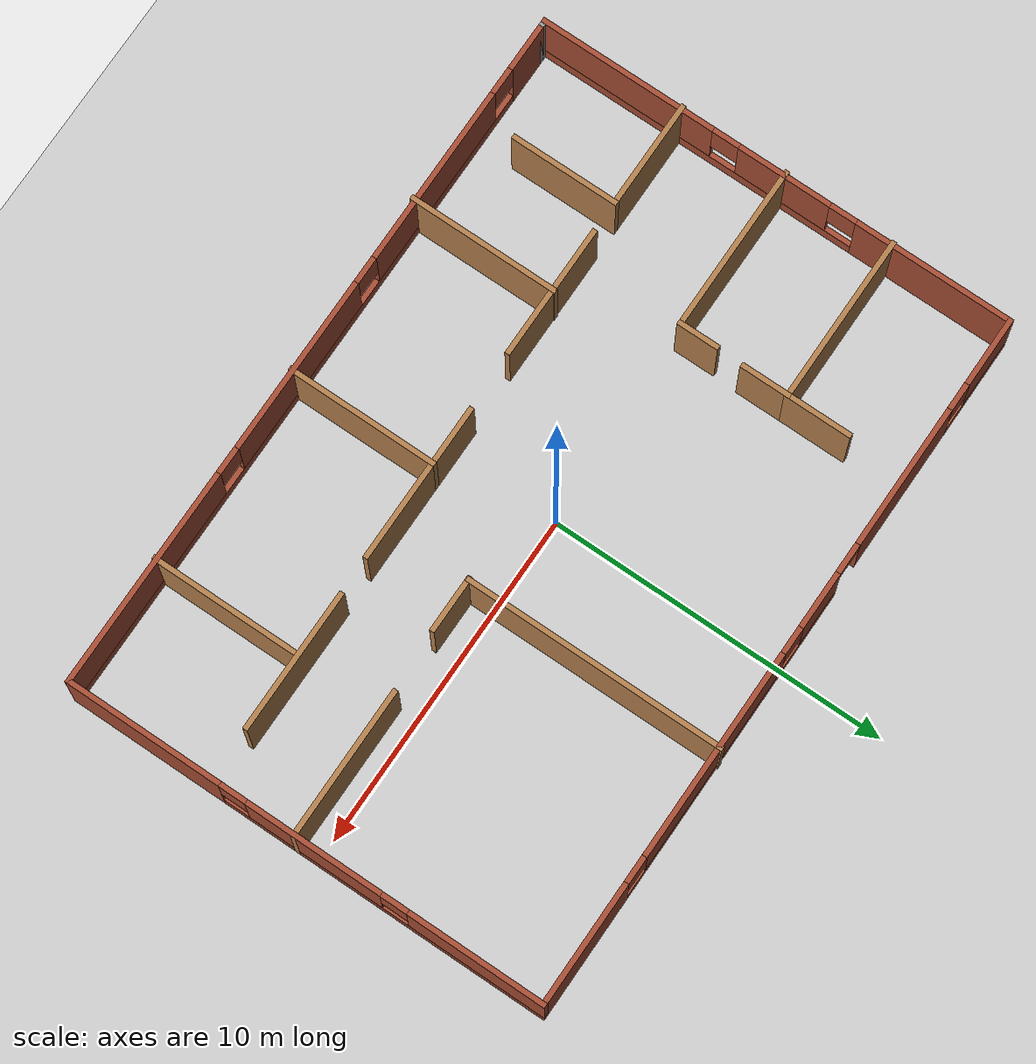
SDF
<sdf version="1.7">
 <world name="default">
  <light name="sun" type="directional">
   <pose>0 0 10 0 -0 0</pose>
   <diffuse>0.8 0.8 0.8 1</diffuse>
   <specular>0.2 0.2 0.2 1</specular>
   <attenuation>
    <range>1000</range>
    <constant>0.9</constant>
    <linear>0.01</linear>
    <quadratic>0.001</quadratic>
   </attenuation>
   <direction>-0.5 0.1 -0.9</direction>
   <spot><inner_angle>0</inner_angle><outer_angle>0</outer_angle><falloff>0</falloff></spot>
  </light>
  <model name="ground_plane">
   <static>1</static>
   <link name="link">
    <collision name="collision">
     <geometry><plane><normal>0 0 1</normal><size>100 100</size></plane></geometry>
     <surface>
      <contact><collide_bitmask>65535</collide_bitmask></contact>
      <friction><ode><mu>100</mu><mu2>50</mu2></ode></friction>
     </surface>
    </collision>
    <visual name="visual">
     <cast_shadows>0</cast_shadows>
     <geometry><plane><normal>0 0 1</normal><size>100 100</size></plane></geometry>
     <material>
      <script><uri>file://media/materials/scripts/gazebo.material</uri><name>Gazebo/Grey</name></script>
     </material>
    </visual>
   </link>
  </model>
  <gravity>0 0 -9.8</gravity>
  <magnetic_field>6e-06 2.3e-05 -4.2e-05</magnetic_field>
  <atmosphere type="adiabatic"/>
  <physics type="ode">
   <max_step_size>0.001</max_step_size>
   <real_time_factor>1</real_time_factor>
   <real_time_update_rate>1000</real_time_update_rate>
  </physics>
  <scene><ambient>0.4 0.4 0.4 1</ambient><background>0.7 0.7 0.7 1</background><shadows>1</shadows></scene>
  <audio><device>default</device></audio>
  <spherical_coordinates>
   <surface_model>EARTH_WGS84</surface_model>
   <latitude_deg>0</latitude_deg>
   <longitude_deg>0</longitude_deg>
   <elevation>0</elevation>
   <heading_deg>0</heading_deg>
  </spherical_coordinates>
  <model name="floor2">
   <pose>0.091476 -0.299536 0 0 -0 0</pose>
   <link name="Wall_10">
    <collision name="Wall_10_Collision">
     <geometry><box><size>2 0.15 2.5</size></box></geometry>
     <pose>0 0 1.25 0 -0 0</pose>
    </collision>
    <visual name="Wall_10_Visual">
     <pose>0 0 1.25 0 -0 0</pose>
     <geometry><box><size>2 0.15 2.5</size></box></geometry>
     <material>
      <script><uri>file://media/materials/scripts/gazebo.material</uri><name>Gazebo/Wood</name></script>
      <ambient>1 1 1 1</ambient>
     </material>
     <meta><layer>0</layer></meta>
    </visual>
    <pose>-5.70047 4.52186 0 0 -0 1.5708</pose>
   </link>
   <link name="Wall_12">
    <collision name="Wall_12_Collision">
     <geometry><box><size>5 0.15 2.5</size></box></geometry>
     <pose>0 0 1.25 0 -0 0</pose>
    </collision>
    <visual name="Wall_12_Visual">
     <pose>0 0 1.25 0 -0 0</pose>
     <geometry><box><size>5 0.15 2.5</size></box></geometry>
     <material>
      <script><uri>file://media/materials/scripts/gazebo.material</uri><name>Gazebo/Wood</name></script>
      <ambient>1 1 1 1</ambient>
     </material>
     <meta><layer>0</layer></meta>
    </visual>
    <pose>-8.16065 0.29006 0 0 -0 0</pose>
   </link>
   <link name="Wall_13">
    <collision name="Wall_13_Collision">
     <geometry><box><size>1.25 0.15 2.5</size></box></geometry>
     <pose>0 0 1.25 0 -0 0</pose>
    </collision>
    <visual name="Wall_13_Visual">
     <pose>0 0 1.25 0 -0 0</pose>
     <geometry><box><size>1.25 0.15 2.5</size></box></geometry>
     <material>
      <script><uri>file://media/materials/scripts/gazebo.material</uri><name>Gazebo/Wood</name></script>
      <ambient>1 1 1 1</ambient>
     </material>
     <meta><layer>0</layer></meta>
    </visual>
    <pose>-5.73565 0.84006 0 0 -0 1.5708</pose>
   </link>
   <link name="Wall_15">
    <collision name="Wall_15_Collision">
     <geometry><box><size>1.5 0.15 2.5</size></box></geometry>
     <pose>0 0 1.25 0 -0 0</pose>
    </collision>
    <visual name="Wall_15_Visual">
     <pose>0 0 1.25 0 -0 0</pose>
     <geometry><box><size>1.5 0.15 2.5</size></box></geometry>
     <material>
      <script><uri>file://media/materials/scripts/gazebo.material</uri><name>Gazebo/Wood</name></script>
      <ambient>1 1 1 1</ambient>
     </material>
     <meta><layer>0</layer></meta>
    </visual>
    <pose>-5.70047 2.92186 0 0 -0 -1.5708</pose>
   </link>
   <link name="Wall_17">
    <collision name="Wall_17_Collision">
     <geometry><box><size>3.25 0.15 2.5</size></box></geometry>
     <pose>0 0 1.25 0 -0 0</pose>
    </collision>
    <visual name="Wall_17_Visual">
     <pose>0 0 1.25 0 -0 0</pose>
     <geometry><box><size>3.25 0.15 2.5</size></box></geometry>
     <material>
      <script><uri>file://media/materials/scripts/gazebo.material</uri><name>Gazebo/Wood</name></script>
      <ambient>1 1 1 1</ambient>
     </material>
     <meta><layer>0</layer></meta>
    </visual>
    <pose>-9.01279 -2.90184 0 0 -0 0</pose>
   </link>
   <link name="Wall_18">
    <collision name="Wall_18_Collision">
     <geometry><box><size>3.25 0.15 2.5</size></box></geometry>
     <pose>0 0 1.25 0 -0 0</pose>
    </collision>
    <visual name="Wall_18_Visual">
     <pose>0 0 1.25 0 -0 0</pose>
     <geometry><box><size>3.25 0.15 2.5</size></box></geometry>
     <material>
      <script><uri>file://media/materials/scripts/gazebo.material</uri><name>Gazebo/Wood</name></script>
      <ambient>1 1 1 1</ambient>
     </material>
     <meta><layer>0</layer></meta>
    </visual>
    <pose>-7.46279 -4.45184 0 0 -0 -1.5708</pose>
   </link>
   <link name="Wall_2">
    <pose>0.159757 -7.15745 0 0 -0 0</pose>
    <visual name="Wall_2_Visual_0">
     <pose>-9.7928 0 1.25 0 -0 0</pose>
     <geometry><box><size>1.4144 0.15 2.5</size></box></geometry>
     <material>
      <script><uri>file://media/materials/scripts/gazebo.material</uri><name>Gazebo/Bricks</name></script>
      <ambient>1 1 1 1</ambient>
     </material>
     <meta><layer>0</layer></meta>
    </visual>
    <collision name="Wall_2_Collision_0">
     <geometry><box><size>1.4144 0.15 2.5</size></box></geometry>
     <pose>-9.7928 0 1.25 0 -0 0</pose>
    </collision>
    <visual name="Wall_2_Visual_1">
     <pose>0.707199 0 0.25 0 -0 0</pose>
     <geometry><box><size>19.5856 0.15 0.5</size></box></geometry>
     <material>
      <script><uri>file://media/materials/scripts/gazebo.material</uri><name>Gazebo/Bricks</name></script>
      <ambient>1 1 1 1</ambient>
     </material>
     <meta><layer>0</layer></meta>
    </visual>
    <collision name="Wall_2_Collision_1">
     <geometry><box><size>19.5856 0.15 0.5</size></box></geometry>
     <pose>0.707199 0 0.25 0 -0 0</pose>
    </collision>
    <visual name="Wall_2_Visual_2">
     <pose>-5.60767 0 1.5 0 -0 0</pose>
     <geometry><box><size>5.35586 0.15 2</size></box></geometry>
     <material>
      <script><uri>file://media/materials/scripts/gazebo.material</uri><name>Gazebo/Bricks</name></script>
      <ambient>1 1 1 1</ambient>
     </material>
     <meta><layer>0</layer></meta>
    </visual>
    <collision name="Wall_2_Collision_2">
     <geometry><box><size>5.35586 0.15 2</size></box></geometry>
     <pose>-5.60767 0 1.5 0 -0 0</pose>
    </collision>
    <visual name="Wall_2_Visual_3">
     <pose>0.512815 0 1.5 0 -0 0</pose>
     <geometry><box><size>5.28511 0.15 2</size></box></geometry>
     <material>
      <script><uri>file://media/materials/scripts/gazebo.material</uri><name>Gazebo/Bricks</name></script>
      <ambient>1 1 1 1</ambient>
     </material>
     <meta><layer>0</layer></meta>
    </visual>
    <collision name="Wall_2_Collision_3">
     <geometry><box><size>5.28511 0.15 2</size></box></geometry>
     <pose>0.512815 0 1.5 0 -0 0</pose>
    </collision>
    <visual name="Wall_2_Visual_4">
     <pose>7.22768 0 1.5 0 -0 0</pose>
     <geometry><box><size>6.54463 0.15 2</size></box></geometry>
     <material>
      <script><uri>file://media/materials/scripts/gazebo.material</uri><name>Gazebo/Bricks</name></script>
      <ambient>1 1 1 1</ambient>
     </material>
     <meta><layer>0</layer></meta>
    </visual>
    <collision name="Wall_2_Collision_4">
     <geometry><box><size>6.54463 0.15 2</size></box></geometry>
     <pose>7.22768 0 1.5 0 -0 0</pose>
    </collision>
    <visual name="Wall_2_Visual_5">
     <pose>-8.6856 0 1.9 0 -0 0</pose>
     <geometry><box><size>0.8 0.15 1.2</size></box></geometry>
     <material>
      <script><uri>file://media/materials/scripts/gazebo.material</uri><name>Gazebo/Bricks</name></script>
      <ambient>1 1 1 1</ambient>
     </material>
     <meta><layer>0</layer></meta>
    </visual>
    <collision name="Wall_2_Collision_5">
     <geometry><box><size>0.8 0.15 1.2</size></box></geometry>
     <pose>-8.6856 0 1.9 0 -0 0</pose>
    </collision>
    <visual name="Wall_2_Visual_6">
     <pose>-2.52974 0 1.9 0 -0 0</pose>
     <geometry><box><size>0.8 0.15 1.2</size></box></geometry>
     <material>
      <script><uri>file://media/materials/scripts/gazebo.material</uri><name>Gazebo/Bricks</name></script>
      <ambient>1 1 1 1</ambient>
     </material>
     <meta><layer>0</layer></meta>
    </visual>
    <collision name="Wall_2_Collision_6">
     <geometry><box><size>0.8 0.15 1.2</size></box></geometry>
     <pose>-2.52974 0 1.9 0 -0 0</pose>
    </collision>
    <visual name="Wall_2_Visual_7">
     <pose>3.55537 0 1.9 0 -0 0</pose>
     <geometry><box><size>0.8 0.15 1.2</size></box></geometry>
     <material>
      <script><uri>file://media/materials/scripts/gazebo.material</uri><name>Gazebo/Bricks</name></script>
      <ambient>1 1 1 1</ambient>
     </material>
     <meta><layer>0</layer></meta>
    </visual>
    <collision name="Wall_2_Collision_7">
     <geometry><box><size>0.8 0.15 1.2</size></box></geometry>
     <pose>3.55537 0 1.9 0 -0 0</pose>
    </collision>
   </link>
   <link name="Wall_20">
    <collision name="Wall_20_Collision">
     <geometry><box><size>4 0.15 2.5</size></box></geometry>
     <pose>0 0 1.25 0 -0 0</pose>
    </collision>
    <visual name="Wall_20_Visual">
     <pose>0 0 1.25 0 -0 0</pose>
     <geometry><box><size>4 0.15 2.5</size></box></geometry>
     <material>
      <script><uri>file://media/materials/scripts/gazebo.material</uri><name>Gazebo/Wood</name></script>
      <ambient>1 1 1 1</ambient>
     </material>
     <meta><layer>0</layer></meta>
    </visual>
    <pose>-4.56929 -2.90184 0 0 -0 0</pose>
   </link>
   <link name="Wall_22">
    <collision name="Wall_22_Collision">
     <geometry><box><size>4.75 0.15 2.5</size></box></geometry>
     <pose>0 0 1.25 0 -0 0</pose>
    </collision>
    <visual name="Wall_22_Visual">
     <pose>0 0 1.25 0 -0 0</pose>
     <geometry><box><size>4.75 0.15 2.5</size></box></geometry>
     <material>
      <script><uri>file://media/materials/scripts/gazebo.material</uri><name>Gazebo/Wood</name></script>
      <ambient>1 1 1 1</ambient>
     </material>
     <meta><layer>0</layer></meta>
    </visual>
    <pose>1.4649 -2.84066 0 0 -0 0</pose>
   </link>
   <link name="Wall_24">
    <collision name="Wall_24_Collision">
     <geometry><box><size>4.25 0.15 2.5</size></box></geometry>
     <pose>0 0 1.25 0 -0 0</pose>
    </collision>
    <visual name="Wall_24_Visual">
     <pose>0 0 1.25 0 -0 0</pose>
     <geometry><box><size>4.25 0.15 2.5</size></box></geometry>
     <material>
      <script><uri>file://media/materials/scripts/gazebo.material</uri><name>Gazebo/Wood</name></script>
      <ambient>1 1 1 1</ambient>
     </material>
     <meta><layer>0</layer></meta>
    </visual>
    <pose>6.99646 -2.81007 0 0 -0 0</pose>
   </link>
   <link name="Wall_26">
    <collision name="Wall_26_Collision">
     <geometry><box><size>4.5 0.15 2.5</size></box></geometry>
     <pose>0 0 1.25 0 -0 0</pose>
    </collision>
    <visual name="Wall_26_Visual">
     <pose>0 0 1.25 0 -0 0</pose>
     <geometry><box><size>4.5 0.15 2.5</size></box></geometry>
     <material>
      <script><uri>file://media/materials/scripts/gazebo.material</uri><name>Gazebo/Wood</name></script>
      <ambient>1 1 1 1</ambient>
     </material>
     <meta><layer>0</layer></meta>
    </visual>
    <pose>6.81246 -5.01566 0 0 -0 -1.5708</pose>
   </link>
   <link name="Wall_28">
    <collision name="Wall_28_Collision">
     <geometry><box><size>4.5 0.15 2.5</size></box></geometry>
     <pose>0 0 1.25 0 -0 0</pose>
    </collision>
    <visual name="Wall_28_Visual">
     <pose>0 0 1.25 0 -0 0</pose>
     <geometry><box><size>4.5 0.15 2.5</size></box></geometry>
     <material>
      <script><uri>file://media/materials/scripts/gazebo.material</uri><name>Gazebo/Wood</name></script>
      <ambient>1 1 1 1</ambient>
     </material>
     <meta><layer>0</layer></meta>
    </visual>
    <pose>0.847368 -5.01566 0 0 -0 -1.5708</pose>
   </link>
   <link name="Wall_3">
    <pose>10.5848 0.01755 0 0 -0 1.5708</pose>
    <visual name="Wall_3_Visual_0">
     <pose>-4.89985 0 1.25 0 -0 0</pose>
     <geometry><box><size>4.7003 0.15 2.5</size></box></geometry>
     <material>
      <script><uri>file://media/materials/scripts/gazebo.material</uri><name>Gazebo/Bricks</name></script>
      <ambient>1 1 1 1</ambient>
     </material>
     <meta><layer>0</layer></meta>
    </visual>
    <collision name="Wall_3_Collision_0">
     <geometry><box><size>4.7003 0.15 2.5</size></box></geometry>
     <pose>-4.89985 0 1.25 0 -0 0</pose>
    </collision>
    <visual name="Wall_3_Visual_1">
     <pose>2.35015 0 0.25 0 -0 0</pose>
     <geometry><box><size>9.7997 0.15 0.5</size></box></geometry>
     <material>
      <script><uri>file://media/materials/scripts/gazebo.material</uri><name>Gazebo/Bricks</name></script>
      <ambient>1 1 1 1</ambient>
     </material>
     <meta><layer>0</layer></meta>
    </visual>
    <collision name="Wall_3_Collision_1">
     <geometry><box><size>9.7997 0.15 0.5</size></box></geometry>
     <pose>2.35015 0 0.25 0 -0 0</pose>
    </collision>
    <visual name="Wall_3_Visual_2">
     <pose>0.291423 0 1.5 0 -0 0</pose>
     <geometry><box><size>4.08224 0.15 2</size></box></geometry>
     <material>
      <script><uri>file://media/materials/scripts/gazebo.material</uri><name>Gazebo/Bricks</name></script>
      <ambient>1 1 1 1</ambient>
     </material>
     <meta><layer>0</layer></meta>
    </visual>
    <collision name="Wall_3_Collision_2">
     <geometry><box><size>4.08224 0.15 2</size></box></geometry>
     <pose>0.291423 0 1.5 0 -0 0</pose>
    </collision>
    <visual name="Wall_3_Visual_3">
     <pose>5.19127 0 1.5 0 -0 0</pose>
     <geometry><box><size>4.11746 0.15 2</size></box></geometry>
     <material>
      <script><uri>file://media/materials/scripts/gazebo.material</uri><name>Gazebo/Bricks</name></script>
      <ambient>1 1 1 1</ambient>
     </material>
     <meta><layer>0</layer></meta>
    </visual>
    <collision name="Wall_3_Collision_3">
     <geometry><box><size>4.11746 0.15 2</size></box></geometry>
     <pose>5.19127 0 1.5 0 -0 0</pose>
    </collision>
    <visual name="Wall_3_Visual_4">
     <pose>-2.1497 0 1.9 0 -0 0</pose>
     <geometry><box><size>0.8 0.15 1.2</size></box></geometry>
     <material>
      <script><uri>file://media/materials/scripts/gazebo.material</uri><name>Gazebo/Bricks</name></script>
      <ambient>1 1 1 1</ambient>
     </material>
     <meta><layer>0</layer></meta>
    </visual>
    <collision name="Wall_3_Collision_4">
     <geometry><box><size>0.8 0.15 1.2</size></box></geometry>
     <pose>-2.1497 0 1.9 0 -0 0</pose>
    </collision>
    <visual name="Wall_3_Visual_5">
     <pose>2.73254 0 1.9 0 -0 0</pose>
     <geometry><box><size>0.8 0.15 1.2</size></box></geometry>
     <material>
      <script><uri>file://media/materials/scripts/gazebo.material</uri><name>Gazebo/Bricks</name></script>
      <ambient>1 1 1 1</ambient>
     </material>
     <meta><layer>0</layer></meta>
    </visual>
    <collision name="Wall_3_Collision_5">
     <geometry><box><size>0.8 0.15 1.2</size></box></geometry>
     <pose>2.73254 0 1.9 0 -0 0</pose>
    </collision>
   </link>
   <link name="Wall_30">
    <collision name="Wall_30_Collision">
     <geometry><box><size>4.5 0.15 2.5</size></box></geometry>
     <pose>0 0 1.25 0 -0 0</pose>
    </collision>
    <visual name="Wall_30_Visual">
     <pose>0 0 1.25 0 -0 0</pose>
     <geometry><box><size>4.5 0.15 2.5</size></box></geometry>
     <material>
      <script><uri>file://media/materials/scripts/gazebo.material</uri><name>Gazebo/Wood</name></script>
      <ambient>1 1 1 1</ambient>
     </material>
     <meta><layer>0</layer></meta>
    </visual>
    <pose>-4.64031 -5.05459 0 0 -0 -1.5708</pose>
   </link>
   <link name="Wall_32">
    <collision name="Wall_32_Collision">
     <geometry><box><size>7.75 0.15 2.5</size></box></geometry>
     <pose>0 0 1.25 0 -0 0</pose>
    </collision>
    <visual name="Wall_32_Visual">
     <pose>0 0 1.25 0 -0 0</pose>
     <geometry><box><size>7.75 0.15 2.5</size></box></geometry>
     <material>
      <script><uri>file://media/materials/scripts/gazebo.material</uri><name>Gazebo/Wood</name></script>
      <ambient>1 1 1 1</ambient>
     </material>
     <meta><layer>0</layer></meta>
    </visual>
    <pose>2.81881 3.42959 0 0 -0 -1.5708</pose>
   </link>
   <link name="Wall_33">
    <collision name="Wall_33_Collision">
     <geometry><box><size>1.71092 0.15 2.5</size></box></geometry>
     <pose>0 0 1.25 0 -0 0</pose>
    </collision>
    <visual name="Wall_33_Visual">
     <pose>0 0 1.25 0 -0 0</pose>
     <geometry><box><size>1.71092 0.15 2.5</size></box></geometry>
     <material>
      <script><uri>file://media/materials/scripts/gazebo.material</uri><name>Gazebo/Wood</name></script>
      <ambient>1 1 1 1</ambient>
     </material>
     <meta><layer>0</layer></meta>
    </visual>
    <pose>3.58605 -0.385884 0 0 -0 -0.002881</pose>
   </link>
   <link name="Wall_35">
    <collision name="Wall_35_Collision">
     <geometry><box><size>4.5 0.15 2.5</size></box></geometry>
     <pose>0 0 1.25 0 -0 0</pose>
    </collision>
    <visual name="Wall_35_Visual">
     <pose>0 0 1.25 0 -0 0</pose>
     <geometry><box><size>4.5 0.15 2.5</size></box></geometry>
     <material>
      <script><uri>file://media/materials/scripts/gazebo.material</uri><name>Gazebo/Wood</name></script>
      <ambient>1 1 1 1</ambient>
     </material>
     <meta><layer>0</layer></meta>
    </visual>
    <pose>8.41065 -0.281209 0 0 -0 0</pose>
   </link>
   <link name="Wall_4">
    <pose>0.034757 7.19255 0 0 -0 3.14159</pose>
    <visual name="Wall_4_Visual_0">
     <pose>-8.76783 0 1.25 0 -0 0</pose>
     <geometry><box><size>3.71435 0.15 2.5</size></box></geometry>
     <material>
      <script><uri>file://media/materials/scripts/gazebo.material</uri><name>Gazebo/Bricks</name></script>
      <ambient>1 1 1 1</ambient>
     </material>
     <meta><layer>0</layer></meta>
    </visual>
    <collision name="Wall_4_Collision_0">
     <geometry><box><size>3.71435 0.15 2.5</size></box></geometry>
     <pose>-8.76783 0 1.25 0 -0 0</pose>
    </collision>
    <visual name="Wall_4_Visual_1">
     <pose>5.61381 0 1.25 0 -0 0</pose>
     <geometry><box><size>4.24451 0.15 2.5</size></box></geometry>
     <material>
      <script><uri>file://media/materials/scripts/gazebo.material</uri><name>Gazebo/Bricks</name></script>
      <ambient>1 1 1 1</ambient>
     </material>
     <meta><layer>0</layer></meta>
    </visual>
    <collision name="Wall_4_Collision_1">
     <geometry><box><size>4.24451 0.15 2.5</size></box></geometry>
     <pose>5.61381 0 1.25 0 -0 0</pose>
    </collision>
    <visual name="Wall_4_Visual_2">
     <pose>-2.15955 0 0.25 0 -0 0</pose>
     <geometry><box><size>9.5022 0.15 0.5</size></box></geometry>
     <material>
      <script><uri>file://media/materials/scripts/gazebo.material</uri><name>Gazebo/Bricks</name></script>
      <ambient>1 1 1 1</ambient>
     </material>
     <meta><layer>0</layer></meta>
    </visual>
    <collision name="Wall_4_Collision_2">
     <geometry><box><size>9.5022 0.15 0.5</size></box></geometry>
     <pose>-2.15955 0 0.25 0 -0 0</pose>
    </collision>
    <visual name="Wall_4_Visual_3">
     <pose>9.18053 0 0.25 0 -0 0</pose>
     <geometry><box><size>2.88894 0.15 0.5</size></box></geometry>
     <material>
      <script><uri>file://media/materials/scripts/gazebo.material</uri><name>Gazebo/Bricks</name></script>
      <ambient>1 1 1 1</ambient>
     </material>
     <meta><layer>0</layer></meta>
    </visual>
    <collision name="Wall_4_Collision_3">
     <geometry><box><size>2.88894 0.15 0.5</size></box></geometry>
     <pose>9.18053 0 0.25 0 -0 0</pose>
    </collision>
    <visual name="Wall_4_Visual_4">
     <pose>-3.00818 0 1.5 0 -0 0</pose>
     <geometry><box><size>6.20495 0.15 2</size></box></geometry>
     <material>
      <script><uri>file://media/materials/scripts/gazebo.material</uri><name>Gazebo/Bricks</name></script>
      <ambient>1 1 1 1</ambient>
     </material>
     <meta><layer>0</layer></meta>
    </visual>
    <collision name="Wall_4_Collision_4">
     <geometry><box><size>6.20495 0.15 2</size></box></geometry>
     <pose>-3.00818 0 1.5 0 -0 0</pose>
    </collision>
    <visual name="Wall_4_Visual_5">
     <pose>1.74293 0 1.5 0 -0 0</pose>
     <geometry><box><size>1.69725 0.15 2</size></box></geometry>
     <material>
      <script><uri>file://media/materials/scripts/gazebo.material</uri><name>Gazebo/Bricks</name></script>
      <ambient>1 1 1 1</ambient>
     </material>
     <meta><layer>0</layer></meta>
    </visual>
    <collision name="Wall_4_Collision_5">
     <geometry><box><size>1.69725 0.15 2</size></box></geometry>
     <pose>1.74293 0 1.5 0 -0 0</pose>
    </collision>
    <visual name="Wall_4_Visual_6">
     <pose>1.74293 0 1.5 0 -0 0</pose>
     <geometry><box><size>1.69725 0.15 2</size></box></geometry>
     <material>
      <script><uri>file://media/materials/scripts/gazebo.material</uri><name>Gazebo/Bricks</name></script>
      <ambient>1 1 1 1</ambient>
     </material>
     <meta><layer>0</layer></meta>
    </visual>
    <collision name="Wall_4_Collision_6">
     <geometry><box><size>1.69725 0.15 2</size></box></geometry>
     <pose>1.74293 0 1.5 0 -0 0</pose>
    </collision>
    <visual name="Wall_4_Visual_7">
     <pose>9.58053 0 1.5 0 -0 0</pose>
     <geometry><box><size>2.08894 0.15 2</size></box></geometry>
     <material>
      <script><uri>file://media/materials/scripts/gazebo.material</uri><name>Gazebo/Bricks</name></script>
      <ambient>1 1 1 1</ambient>
     </material>
     <meta><layer>0</layer></meta>
    </visual>
    <collision name="Wall_4_Collision_7">
     <geometry><box><size>2.08894 0.15 2</size></box></geometry>
     <pose>9.58053 0 1.5 0 -0 0</pose>
    </collision>
    <visual name="Wall_4_Visual_8">
     <pose>-6.51065 0 1.9 0 -0 0</pose>
     <geometry><box><size>0.8 0.15 1.2</size></box></geometry>
     <material>
      <script><uri>file://media/materials/scripts/gazebo.material</uri><name>Gazebo/Bricks</name></script>
      <ambient>1 1 1 1</ambient>
     </material>
     <meta><layer>0</layer></meta>
    </visual>
    <collision name="Wall_4_Collision_8">
     <geometry><box><size>0.8 0.15 1.2</size></box></geometry>
     <pose>-6.51065 0 1.9 0 -0 0</pose>
    </collision>
    <visual name="Wall_4_Visual_9">
     <pose>8.13606 0 1.9 0 -0 0</pose>
     <geometry><box><size>0.8 0.15 1.2</size></box></geometry>
     <material>
      <script><uri>file://media/materials/scripts/gazebo.material</uri><name>Gazebo/Bricks</name></script>
      <ambient>1 1 1 1</ambient>
     </material>
     <meta><layer>0</layer></meta>
    </visual>
    <collision name="Wall_4_Collision_9">
     <geometry><box><size>0.8 0.15 1.2</size></box></geometry>
     <pose>8.13606 0 1.9 0 -0 0</pose>
    </collision>
    <visual name="Wall_4_Visual_10">
     <pose>0.494298 0 1.9 0 -0 0</pose>
     <geometry><box><size>0.8 0.15 1.2</size></box></geometry>
     <material>
      <script><uri>file://media/materials/scripts/gazebo.material</uri><name>Gazebo/Bricks</name></script>
      <ambient>1 1 1 1</ambient>
     </material>
     <meta><layer>0</layer></meta>
    </visual>
    <collision name="Wall_4_Collision_10">
     <geometry><box><size>0.8 0.15 1.2</size></box></geometry>
     <pose>0.494298 0 1.9 0 -0 0</pose>
    </collision>
    <visual name="Wall_4_Visual_11">
     <pose>3.04155 0 2.25 0 -0 0</pose>
     <geometry><box><size>0.9 0.15 0.5</size></box></geometry>
     <material>
      <script><uri>file://media/materials/scripts/gazebo.material</uri><name>Gazebo/Bricks</name></script>
      <ambient>1 1 1 1</ambient>
     </material>
     <meta><layer>0</layer></meta>
    </visual>
    <collision name="Wall_4_Collision_11">
     <geometry><box><size>0.9 0.15 0.5</size></box></geometry>
     <pose>3.04155 0 2.25 0 -0 0</pose>
    </collision>
    <visual name="Wall_4_Visual_12">
     <pose>3.04155 0 2.25 0 -0 0</pose>
     <geometry><box><size>0.9 0.15 0.5</size></box></geometry>
     <material>
      <script><uri>file://media/materials/scripts/gazebo.material</uri><name>Gazebo/Bricks</name></script>
      <ambient>1 1 1 1</ambient>
     </material>
     <meta><layer>0</layer></meta>
    </visual>
    <collision name="Wall_4_Collision_12">
     <geometry><box><size>0.9 0.15 0.5</size></box></geometry>
     <pose>3.04155 0 2.25 0 -0 0</pose>
    </collision>
   </link>
   <link name="Wall_5">
    <pose>-10.5152 0.01755 0 0 -0 -1.5708</pose>
    <visual name="Wall_5_Visual_0">
     <pose>-4.87286 0 1.25 0 -0 0</pose>
     <geometry><box><size>4.75427 0.15 2.5</size></box></geometry>
     <material>
      <script><uri>file://media/materials/scripts/gazebo.material</uri><name>Gazebo/Bricks</name></script>
      <ambient>1 1 1 1</ambient>
     </material>
     <meta><layer>0</layer></meta>
    </visual>
    <collision name="Wall_5_Collision_0">
     <geometry><box><size>4.75427 0.15 2.5</size></box></geometry>
     <pose>-4.87286 0 1.25 0 -0 0</pose>
    </collision>
    <visual name="Wall_5_Visual_1">
     <pose>2.37714 0 0.25 0 -0 0</pose>
     <geometry><box><size>9.74573 0.15 0.5</size></box></geometry>
     <material>
      <script><uri>file://media/materials/scripts/gazebo.material</uri><name>Gazebo/Bricks</name></script>
      <ambient>1 1 1 1</ambient>
     </material>
     <meta><layer>0</layer></meta>
    </visual>
    <collision name="Wall_5_Collision_1">
     <geometry><box><size>9.74573 0.15 0.5</size></box></geometry>
     <pose>2.37714 0 0.25 0 -0 0</pose>
    </collision>
    <visual name="Wall_5_Visual_2">
     <pose>-0.291423 0 1.5 0 -0 0</pose>
     <geometry><box><size>2.80861 0.15 2</size></box></geometry>
     <material>
      <script><uri>file://media/materials/scripts/gazebo.material</uri><name>Gazebo/Bricks</name></script>
      <ambient>1 1 1 1</ambient>
     </material>
     <meta><layer>0</layer></meta>
    </visual>
    <collision name="Wall_5_Collision_2">
     <geometry><box><size>2.80861 0.15 2</size></box></geometry>
     <pose>-0.291423 0 1.5 0 -0 0</pose>
    </collision>
    <visual name="Wall_5_Visual_3">
     <pose>4.58144 0 1.5 0 -0 0</pose>
     <geometry><box><size>5.33712 0.15 2</size></box></geometry>
     <material>
      <script><uri>file://media/materials/scripts/gazebo.material</uri><name>Gazebo/Bricks</name></script>
      <ambient>1 1 1 1</ambient>
     </material>
     <meta><layer>0</layer></meta>
    </visual>
    <collision name="Wall_5_Collision_3">
     <geometry><box><size>5.33712 0.15 2</size></box></geometry>
     <pose>4.58144 0 1.5 0 -0 0</pose>
    </collision>
    <visual name="Wall_5_Visual_4">
     <pose>-2.09573 0 1.9 0 -0 0</pose>
     <geometry><box><size>0.8 0.15 1.2</size></box></geometry>
     <material>
      <script><uri>file://media/materials/scripts/gazebo.material</uri><name>Gazebo/Bricks</name></script>
      <ambient>1 1 1 1</ambient>
     </material>
     <meta><layer>0</layer></meta>
    </visual>
    <collision name="Wall_5_Collision_4">
     <geometry><box><size>0.8 0.15 1.2</size></box></geometry>
     <pose>-2.09573 0 1.9 0 -0 0</pose>
    </collision>
    <visual name="Wall_5_Visual_5">
     <pose>1.51288 0 1.9 0 -0 0</pose>
     <geometry><box><size>0.8 0.15 1.2</size></box></geometry>
     <material>
      <script><uri>file://media/materials/scripts/gazebo.material</uri><name>Gazebo/Bricks</name></script>
      <ambient>1 1 1 1</ambient>
     </material>
     <meta><layer>0</layer></meta>
    </visual>
    <collision name="Wall_5_Collision_5">
     <geometry><box><size>0.8 0.15 1.2</size></box></geometry>
     <pose>1.51288 0 1.9 0 -0 0</pose>
    </collision>
   </link>
   <link name="Wall_7">
    <collision name="Wall_7_Collision">
     <geometry><box><size>0.4 0.15 2.5</size></box></geometry>
     <pose>0 0 1.25 0 -0 0</pose>
    </collision>
    <visual name="Wall_7_Visual">
     <pose>0 0 1.25 0 -0 0</pose>
     <geometry><box><size>0.4 0.15 2.5</size></box></geometry>
     <material>
      <script><uri>file://media/materials/scripts/gazebo.material</uri><name>Gazebo/Grey</name></script>
      <ambient>1 1 1 1</ambient>
     </material>
     <meta><layer>0</layer></meta>
    </visual>
    <pose>-10.3902 -7.15745 0 0 -0 -3.14159</pose>
   </link>
   <link name="Wall_9">
    <collision name="Wall_9_Collision">
     <geometry><box><size>5 0.15 2.5</size></box></geometry>
     <pose>0 0 1.25 0 -0 0</pose>
    </collision>
    <visual name="Wall_9_Visual">
     <pose>0 0 1.25 0 -0 0</pose>
     <geometry><box><size>5 0.15 2.5</size></box></geometry>
     <material>
      <script><uri>file://media/materials/scripts/gazebo.material</uri><name>Gazebo/Wood</name></script>
      <ambient>1 1 1 1</ambient>
     </material>
     <meta><layer>0</layer></meta>
    </visual>
    <pose>-8.12547 3.59686 0 0 -0 0</pose>
   </link>
   <static>1</static>
  </model>
 </world>
</sdf>
